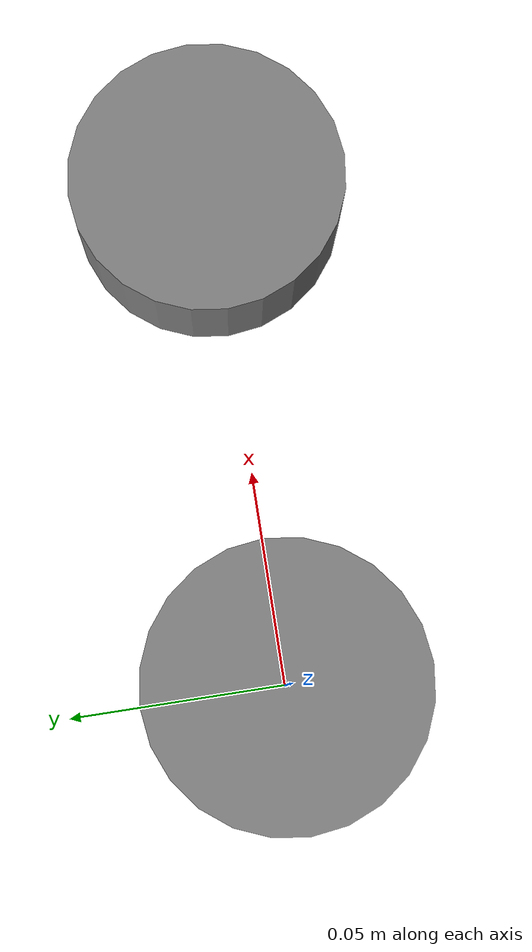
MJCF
<mujoco model="rig-drivetrain">
  <option timestep="0.02"/>
  <worldbody>
    <body name="left_wheel">
      <joint name="left" type="hinge" axis="0 0 1"
             damping="0.0005" frictionloss="0.0005" armature="0.0004"/>
      <geom name="left_disc" type="cylinder" size="0.033 0.013" mass="0.03"/>
    </body>
    <body name="right_wheel" pos="0.12 0 0">
      <joint name="right" type="hinge" axis="0 0 1"
             damping="0.0005" frictionloss="0.0005" armature="0.0004"/>
      <geom name="right_disc" type="cylinder" size="0.033 0.013" mass="0.03"/>
    </body>
  </worldbody>
  <actuator>
    <motor name="left_motor" joint="left" gear="0.0001"/>
    <motor name="right_motor" joint="right" gear="0.0001"/>
  </actuator>
  <sensor>
    <jointpos name="left_angle" joint="left"/>
    <jointpos name="right_angle" joint="right"/>
  </sensor>
</mujoco>
